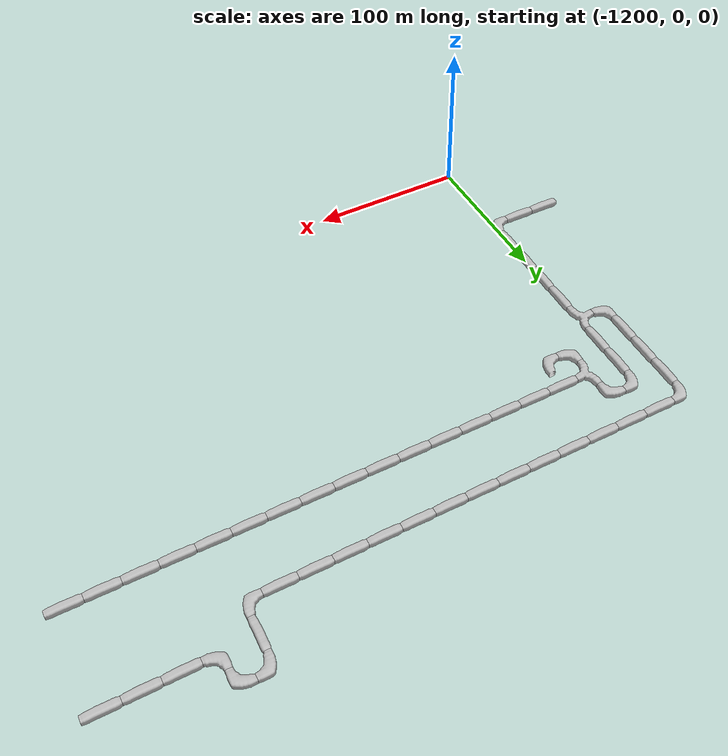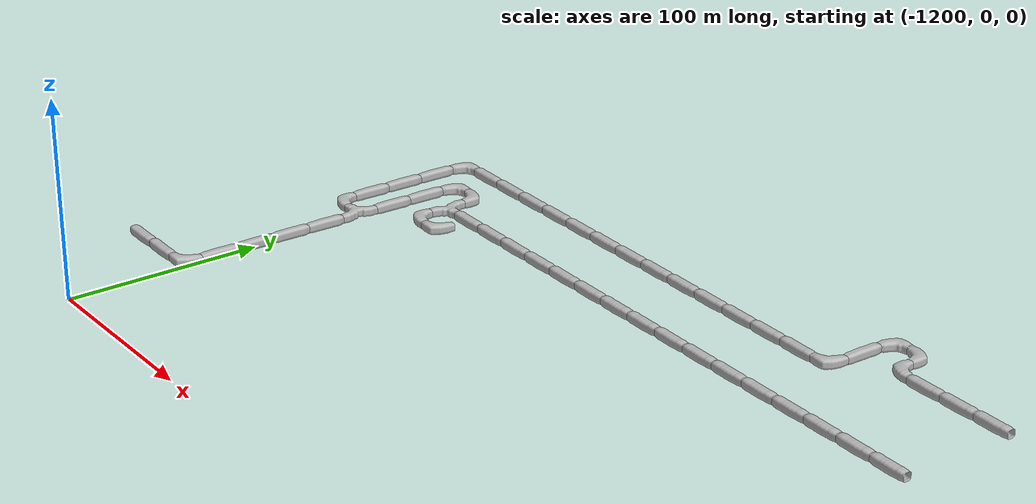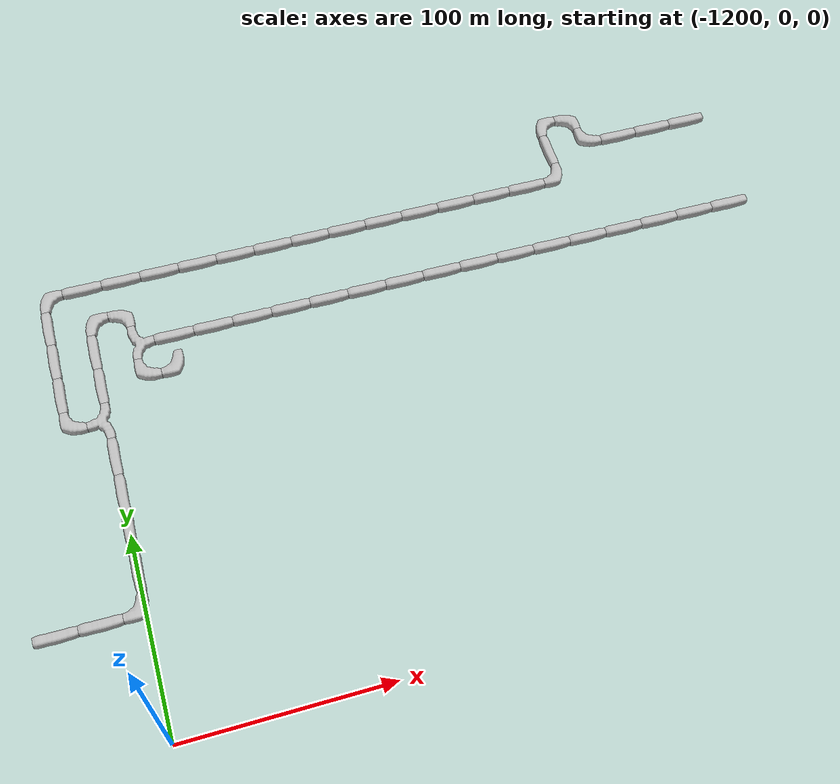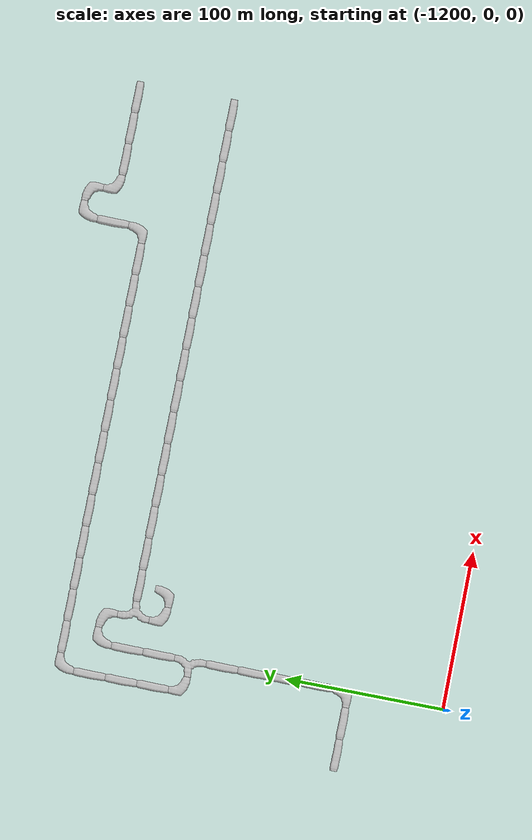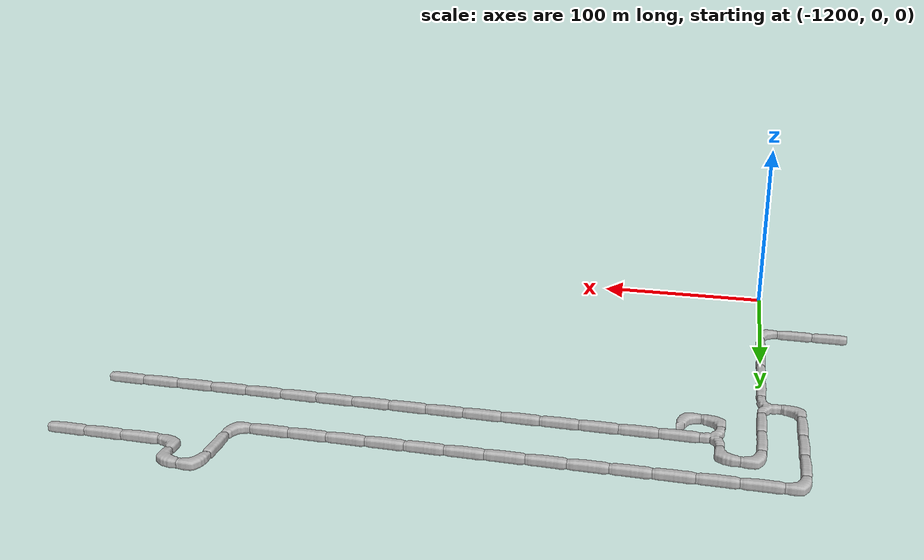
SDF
<sdf version="1.6">
 <world name="cave_32000_16">
  <include>
   <static>true</static>
   <name>cave_-43_10</name>
   <pose>-860 200 0 0 0 1.5707963267948966</pose>
   <uri>model://cave_straight_20m</uri>
  </include>
  <include>
   <static>true</static>
   <name>cave_-44_10</name>
   <pose>-880 200 0 0 0 1.5707963267948966</pose>
   <uri>model://cave_straight_20m</uri>
  </include>
  <include>
   <static>true</static>
   <name>cave_-45_10</name>
   <pose>-900 200 0 0 0 1.5707963267948966</pose>
   <uri>model://cave_straight_20m</uri>
  </include>
  <include>
   <static>true</static>
   <name>cave_-46_10</name>
   <pose>-920 200 0 0 0 1.5707963267948966</pose>
   <uri>model://cave_straight_20m</uri>
  </include>
  <include>
   <static>true</static>
   <name>cave_-47_10</name>
   <pose>-940 200 0 0 0 1.5707963267948966</pose>
   <uri>model://cave_straight_20m</uri>
  </include>
  <include>
   <static>true</static>
   <name>cave_-48_10</name>
   <pose>-960 200 0 0 0 1.5707963267948966</pose>
   <uri>model://cave_straight_20m</uri>
  </include>
  <include>
   <static>true</static>
   <name>cave_-49_10</name>
   <pose>-980 200 0 0 0 1.5707963267948966</pose>
   <uri>model://cave_straight_20m</uri>
  </include>
  <include>
   <static>true</static>
   <name>cave_-50_10</name>
   <pose>-1000 200 0 0 0 1.5707963267948966</pose>
   <uri>model://cave_straight_20m</uri>
  </include>
  <include>
   <static>true</static>
   <name>cave_-51_10</name>
   <pose>-1020 200 0 0 0 1.5707963267948966</pose>
   <uri>model://cave_straight_20m</uri>
  </include>
  <include>
   <static>true</static>
   <name>cave_-52_10</name>
   <pose>-1040 200 0 0 0 1.5707963267948966</pose>
   <uri>model://cave_straight_20m</uri>
  </include>
  <include>
   <static>true</static>
   <name>cave_-53_10</name>
   <pose>-1060 200 0 0 0 1.5707963267948966</pose>
   <uri>model://cave_straight_20m</uri>
  </include>
  <include>
   <static>true</static>
   <name>cave_-54_10</name>
   <pose>-1080 200 0 0 0 1.5707963267948966</pose>
   <uri>model://cave_straight_20m</uri>
  </include>
  <include>
   <static>true</static>
   <name>cave_-55_10</name>
   <pose>-1100 200 0 0 0 1.5707963267948966</pose>
   <uri>model://cave_straight_20m</uri>
  </include>
  <include>
   <static>true</static>
   <name>cave_-56_10</name>
   <pose>-1120 200 0 0 0 1.5707963267948966</pose>
   <uri>model://cave_straight_20m</uri>
  </include>
  <include>
   <static>true</static>
   <name>cave_-57_10</name>
   <pose>-1140 200 0 0 0 1.5707963267948966</pose>
   <uri>model://cave_straight_20m</uri>
  </include>
  <include>
   <static>true</static>
   <name>cave_-58_10</name>
   <pose>-1160 200 0 0 0 1.5707963267948966</pose>
   <uri>model://cave_straight_20m</uri>
  </include>
  <include>
   <static>true</static>
   <name>cave_-59_10</name>
   <pose>-1180 200 0 0 0 -1.5707963267948966</pose>
   <uri>model://cave_3way_20m</uri>
  </include>
  <include>
   <static>true</static>
   <name>cave_-59_9</name>
   <pose>-1180 180 0 0 0 0.0</pose>
   <uri>model://cave_L_20m</uri>
  </include>
  <include>
   <static>true</static>
   <name>cave_-58_9</name>
   <pose>-1160 180 0 0 0 1.5707963267948966</pose>
   <uri>model://cave_L_20m</uri>
  </include>
  <include>
   <static>true</static>
   <name>cave_-59_11</name>
   <pose>-1180 220 0 0 0 3.141592653589793</pose>
   <uri>model://cave_L_20m</uri>
  </include>
  <include>
   <static>true</static>
   <name>cave_-60_11</name>
   <pose>-1200 220 0 0 0 -1.5707963267948966</pose>
   <uri>model://cave_L_20m</uri>
  </include>
  <include>
   <static>true</static>
   <name>cave_-60_10</name>
   <pose>-1200 200 0 0 0 0.0</pose>
   <uri>model://cave_straight_20m</uri>
  </include>
  <include>
   <static>true</static>
   <name>cave_-60_9</name>
   <pose>-1200 180 0 0 0 0.0</pose>
   <uri>model://cave_straight_20m</uri>
  </include>
  <include>
   <static>true</static>
   <name>cave_-60_8</name>
   <pose>-1200 160 0 0 0 1.5707963267948966</pose>
   <uri>model://cave_3way_20m</uri>
  </include>
  <include>
   <static>true</static>
   <name>cave_-60_7</name>
   <pose>-1200 140 0 0 0 0.0</pose>
   <uri>model://cave_straight_20m</uri>
  </include>
  <include>
   <static>true</static>
   <name>cave_-60_6</name>
   <pose>-1200 120 0 0 0 0.0</pose>
   <uri>model://cave_straight_20m</uri>
  </include>
  <include>
   <static>true</static>
   <name>cave_-60_5</name>
   <pose>-1200 100 0 0 0 0.0</pose>
   <uri>model://cave_straight_20m</uri>
  </include>
  <include>
   <static>true</static>
   <name>cave_-60_4</name>
   <pose>-1200 80 0 0 0 0.0</pose>
   <uri>model://cave_straight_20m</uri>
  </include>
  <include>
   <static>true</static>
   <name>cave_-60_3</name>
   <pose>-1200 60 0 0 0 1.5707963267948966</pose>
   <uri>model://cave_L_20m</uri>
  </include>
  <include>
   <static>true</static>
   <name>cave_-61_3</name>
   <pose>-1220 60 0 0 0 1.5707963267948966</pose>
   <uri>model://cave_straight_20m</uri>
  </include>
  <include>
   <static>true</static>
   <name>cave_-62_3</name>
   <pose>-1240 60 0 0 0 1.5707963267948966</pose>
   <uri>model://cave_straight_20m</uri>
  </include>
  <include>
   <static>true</static>
   <name>cave_-61_8</name>
   <pose>-1220 160 0 0 0 0.0</pose>
   <uri>model://cave_L_20m</uri>
  </include>
  <include>
   <static>true</static>
   <name>cave_-61_9</name>
   <pose>-1220 180 0 0 0 0.0</pose>
   <uri>model://cave_straight_20m</uri>
  </include>
  <include>
   <static>true</static>
   <name>cave_-61_10</name>
   <pose>-1220 200 0 0 0 0.0</pose>
   <uri>model://cave_straight_20m</uri>
  </include>
  <include>
   <static>true</static>
   <name>cave_-61_11</name>
   <pose>-1220 220 0 0 0 0.0</pose>
   <uri>model://cave_straight_20m</uri>
  </include>
  <include>
   <static>true</static>
   <name>cave_-61_12</name>
   <pose>-1220 240 0 0 0 -1.5707963267948966</pose>
   <uri>model://cave_L_20m</uri>
  </include>
  <include>
   <static>true</static>
   <name>cave_-60_12</name>
   <pose>-1200 240 0 0 0 1.5707963267948966</pose>
   <uri>model://cave_straight_20m</uri>
  </include>
  <include>
   <static>true</static>
   <name>cave_-59_12</name>
   <pose>-1180 240 0 0 0 1.5707963267948966</pose>
   <uri>model://cave_straight_20m</uri>
  </include>
  <include>
   <static>true</static>
   <name>cave_-58_12</name>
   <pose>-1160 240 0 0 0 1.5707963267948966</pose>
   <uri>model://cave_straight_20m</uri>
  </include>
  <include>
   <static>true</static>
   <name>cave_-57_12</name>
   <pose>-1140 240 0 0 0 1.5707963267948966</pose>
   <uri>model://cave_straight_20m</uri>
  </include>
  <include>
   <static>true</static>
   <name>cave_-56_12</name>
   <pose>-1120 240 0 0 0 1.5707963267948966</pose>
   <uri>model://cave_straight_20m</uri>
  </include>
  <include>
   <static>true</static>
   <name>cave_-55_12</name>
   <pose>-1100 240 0 0 0 1.5707963267948966</pose>
   <uri>model://cave_straight_20m</uri>
  </include>
  <include>
   <static>true</static>
   <name>cave_-54_12</name>
   <pose>-1080 240 0 0 0 1.5707963267948966</pose>
   <uri>model://cave_straight_20m</uri>
  </include>
  <include>
   <static>true</static>
   <name>cave_-53_12</name>
   <pose>-1060 240 0 0 0 1.5707963267948966</pose>
   <uri>model://cave_straight_20m</uri>
  </include>
  <include>
   <static>true</static>
   <name>cave_-52_12</name>
   <pose>-1040 240 0 0 0 1.5707963267948966</pose>
   <uri>model://cave_straight_20m</uri>
  </include>
  <include>
   <static>true</static>
   <name>cave_-51_12</name>
   <pose>-1020 240 0 0 0 1.5707963267948966</pose>
   <uri>model://cave_straight_20m</uri>
  </include>
  <include>
   <static>true</static>
   <name>cave_-50_12</name>
   <pose>-1000 240 0 0 0 1.5707963267948966</pose>
   <uri>model://cave_straight_20m</uri>
  </include>
  <include>
   <static>true</static>
   <name>cave_-49_12</name>
   <pose>-980 240 0 0 0 1.5707963267948966</pose>
   <uri>model://cave_straight_20m</uri>
  </include>
  <include>
   <static>true</static>
   <name>cave_-48_12</name>
   <pose>-960 240 0 0 0 1.5707963267948966</pose>
   <uri>model://cave_straight_20m</uri>
  </include>
  <include>
   <static>true</static>
   <name>cave_-47_12</name>
   <pose>-940 240 0 0 0 1.5707963267948966</pose>
   <uri>model://cave_L_20m</uri>
  </include>
  <include>
   <static>true</static>
   <name>cave_-47_13</name>
   <pose>-940 260 0 0 0 0.0</pose>
   <uri>model://cave_straight_20m</uri>
  </include>
  <include>
   <static>true</static>
   <name>cave_-47_14</name>
   <pose>-940 280 0 0 0 -1.5707963267948966</pose>
   <uri>model://cave_L_20m</uri>
  </include>
  <include>
   <static>true</static>
   <name>cave_-46_14</name>
   <pose>-920 280 0 0 0 3.141592653589793</pose>
   <uri>model://cave_L_20m</uri>
  </include>
  <include>
   <static>true</static>
   <name>cave_-46_13</name>
   <pose>-920 260 0 0 0 0.0</pose>
   <uri>model://cave_L_20m</uri>
  </include>
  <include>
   <static>true</static>
   <name>cave_-45_13</name>
   <pose>-900 260 0 0 0 1.5707963267948966</pose>
   <uri>model://cave_straight_20m</uri>
  </include>
  <include>
   <static>true</static>
   <name>cave_-44_13</name>
   <pose>-880 260 0 0 0 1.5707963267948966</pose>
   <uri>model://cave_straight_20m</uri>
  </include>
  <include>
   <static>true</static>
   <name>cave_-43_13</name>
   <pose>-860 260 0 0 0 1.5707963267948966</pose>
   <uri>model://cave_straight_20m</uri>
  </include>
 </world>
</sdf>
